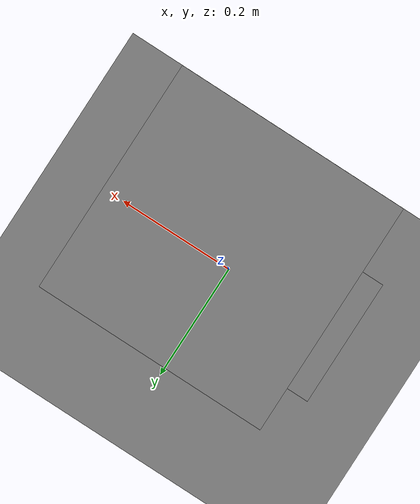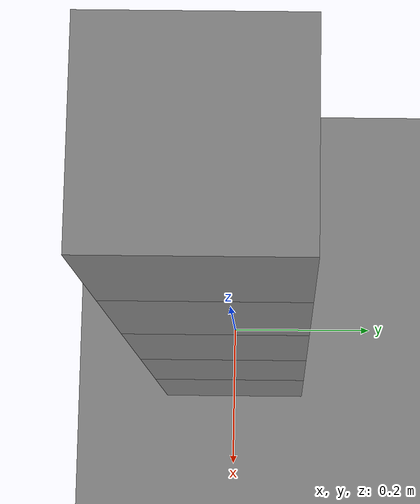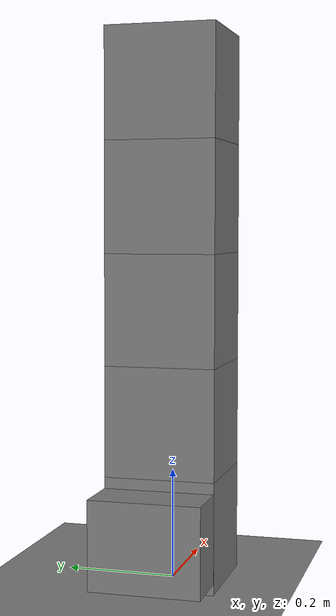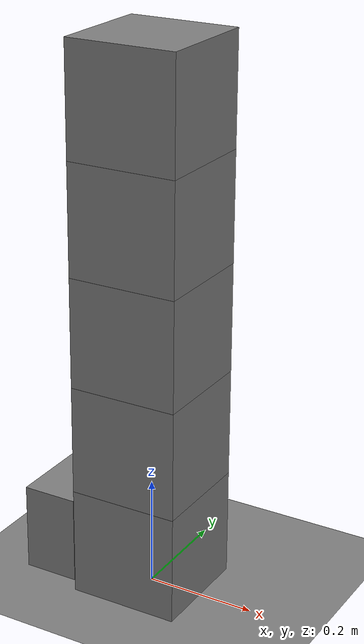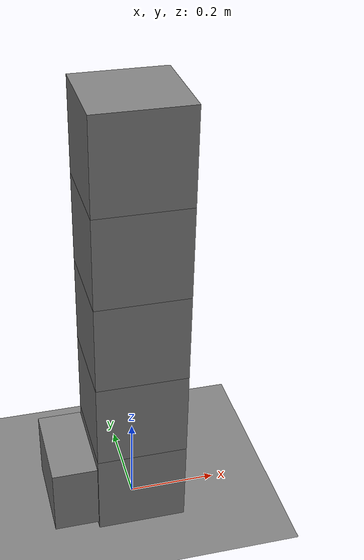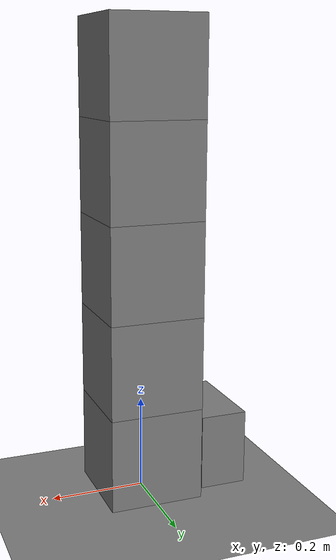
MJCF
<mujoco model="stack_fixture">
  <option timestep="0.002"/>
  <worldbody>
    <geom name="floor" type="plane" size="6 6 0.1" friction="0.6 0.005 0.0001"/>
    <body name="block1" pos="0 0 0.100">
      <freejoint/>
      <geom name="block1" type="box" size="0.1 0.1 0.1" mass="0.5" friction="0.6 0.005 0.0001"/>
    </body>
    <body name="block2" pos="0 0 0.300">
      <freejoint/>
      <geom name="block2" type="box" size="0.1 0.1 0.1" mass="0.5" friction="0.6 0.005 0.0001"/>
    </body>
    <body name="block3" pos="0 0 0.500">
      <freejoint/>
      <geom name="block3" type="box" size="0.1 0.1 0.1" mass="0.5" friction="0.6 0.005 0.0001"/>
    </body>
    <body name="block4" pos="0 0 0.700">
      <freejoint/>
      <geom name="block4" type="box" size="0.1 0.1 0.1" mass="0.5" friction="0.6 0.005 0.0001"/>
    </body>
    <body name="block5" pos="0 0 0.900">
      <freejoint/>
      <geom name="block5" type="box" size="0.1 0.1 0.1" mass="0.5" friction="0.6 0.005 0.0001"/>
    </body>
    <body name="pusher" pos="-0.151 0 0.1">
      <joint name="pusher_slide" type="slide" axis="1 0 0" limited="true" range="0 0.5" damping="0"/>
      <geom name="pusher" type="box" size="0.05 0.1 0.08" mass="2.0" friction="0.3 0.005 0.0001"/>
    </body>
  </worldbody>
  <actuator>
    <motor name="pusher_motor" joint="pusher_slide" gear="1" ctrllimited="true" ctrlrange="0 30"/>
  </actuator>
  <keyframe>
    <key name="start" qpos="0 0 0.100 1 0 0 0  0 0 0.300 1 0 0 0  0 0 0.500 1 0 0 0  0 0 0.700 1 0 0 0  0 0 0.900 1 0 0 0  0" qvel="0 0 0 0 0 0  0 0 0 0 0 0  0 0 0 0 0 0  0 0 0 0 0 0  0 0 0 0 0 0  0" ctrl="22"/>
  </keyframe>
</mujoco>
